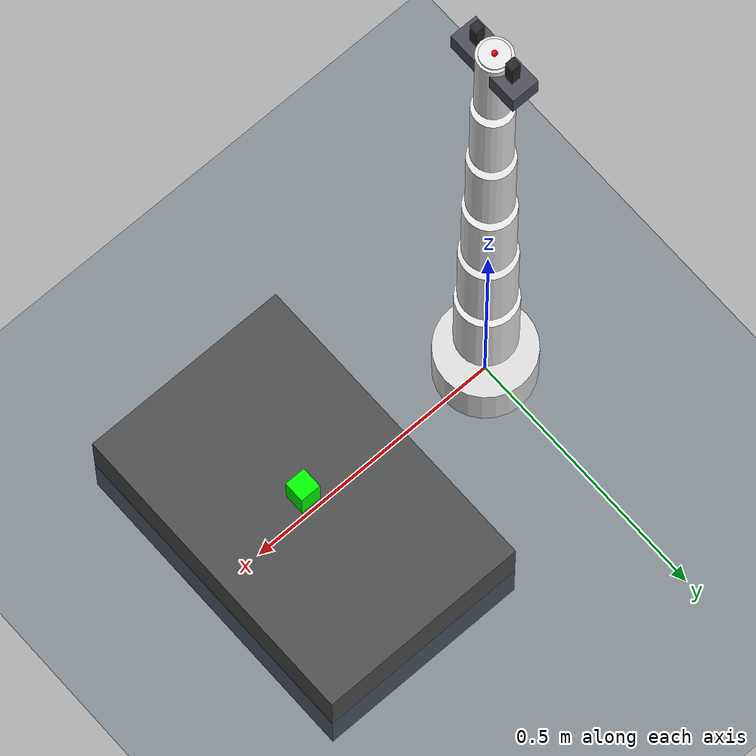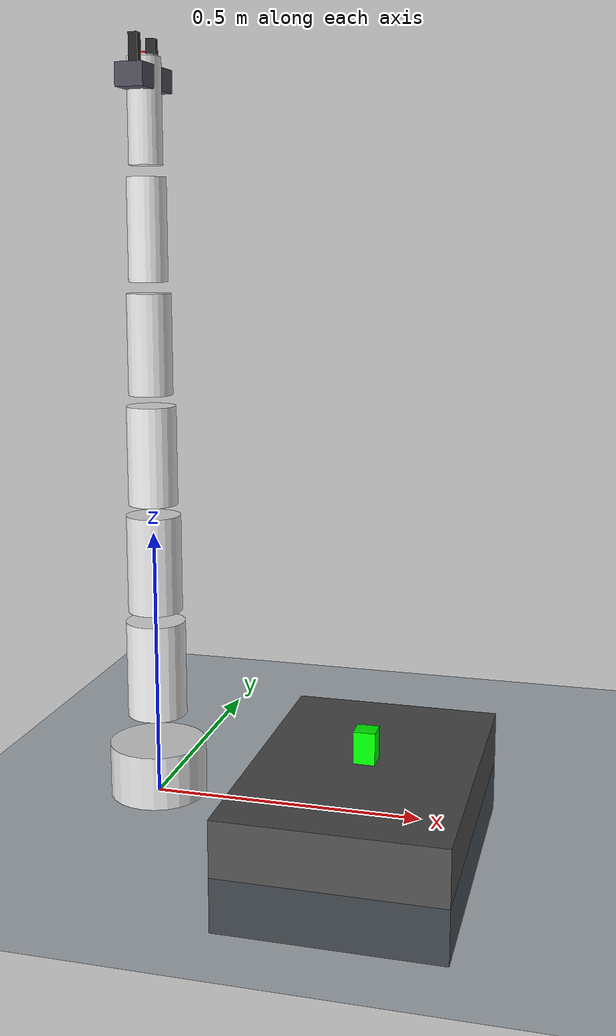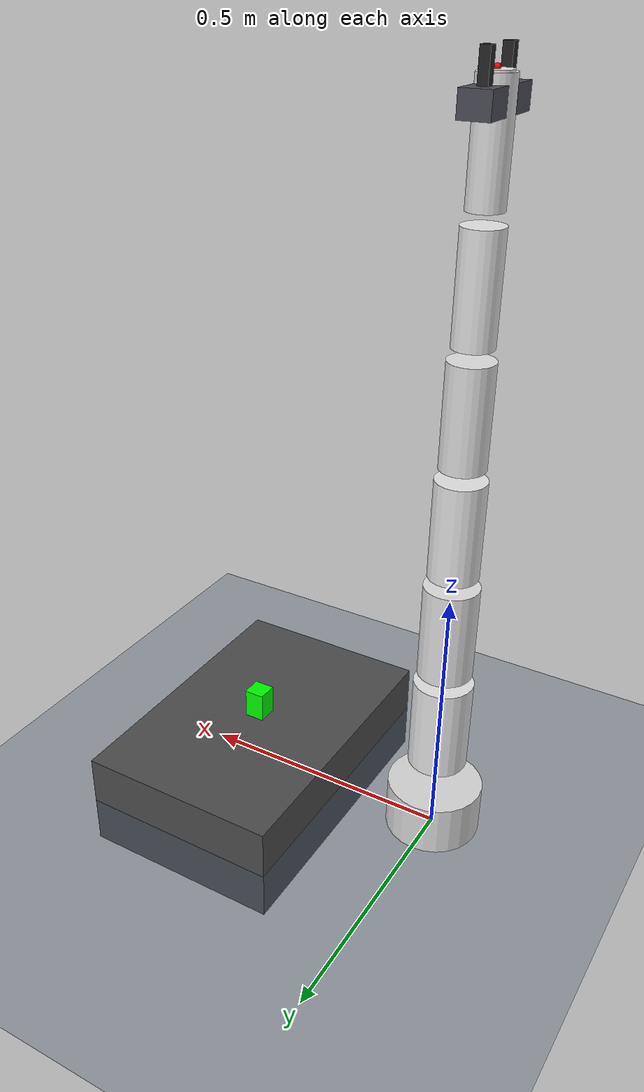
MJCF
<mujoco model="franka_panda_vla_ready">
    <compiler angle="radian"/>
    <option timestep="0.002" gravity="0 0 -9.81"/>
    <worldbody>
        <light directional="true" diffuse="0.6 0.6 0.6" pos="0 0 5" dir="0 0 -1"/>
        <geom name="floor" type="plane" size="5 5 0.1" rgba="0.2 0.3 0.4 1" contype="1" conaffinity="9"/>
        <body name="table" pos="0.4 0 0">
            <geom type="box" size="0.2 0.3 0.1" rgba="0.3 0.3 0.3 1" contype="1" conaffinity="9"/>
        </body>
        <!-- block rests ON the table top (table top = z 0.1), spawned just 2mm above to settle -->
        <body name="green_block" pos="0.4 0 0.132">
            <joint name="block_joint" type="free"/>
            <geom name="block_geom" type="box" size="0.02 0.02 0.03" rgba="0.0 1.0 0.0 1"
                  friction="1.5 0.01 0.0001" condim="4" contype="8" conaffinity="5"/>
        </body>
        <camera name="vla_front_camera" pos="0.8 0.0 0.6" xyaxes="0 1 0 -0.7 0 0.7" mode="fixed"/>
        <body name="link0" pos="0 0 0.05">
            <geom type="cylinder" size="0.09 0.05" rgba="0.85 0.85 0.85 1" contype="2" conaffinity="0"/>
            <body name="link1" gravcomp="1" pos="0 0 0.1">
                <joint name="joint1" type="hinge" axis="0 0 1" range="-2.8 2.8" damping="3"/>
                <geom type="cylinder" pos="0 0 0.095" size="0.055 0.09" rgba="0.9 0.9 0.9 1" contype="2" conaffinity="0"/>
                <body name="link2" gravcomp="1" pos="0 0 0.2">
                    <joint name="joint2" type="hinge" axis="0 1 0" range="-1.7 1.7" damping="3"/>
                    <geom type="cylinder" pos="0 0 0.095" size="0.05 0.09" rgba="0.88 0.88 0.88 1" contype="2" conaffinity="0"/>
                    <body name="link3" gravcomp="1" pos="0 0 0.2">
                        <joint name="joint3" type="hinge" axis="0 0 1" range="-2.8 2.8" damping="3"/>
                        <geom type="cylinder" pos="0 0 0.095" size="0.045 0.09" rgba="0.9 0.9 0.9 1" contype="2" conaffinity="0"/>
                        <body name="link4" gravcomp="1" pos="0 0 0.2">
                            <joint name="joint4" type="hinge" axis="0 -1 0" range="-3.0 0.0" damping="3"/>
                            <geom type="cylinder" pos="0 0 0.095" size="0.04 0.09" rgba="0.88 0.88 0.88 1" contype="2" conaffinity="0"/>
                            <body name="link5" gravcomp="1" pos="0 0 0.2">
                                <joint name="joint5" type="hinge" axis="0 0 1" range="-2.8 2.8" damping="3"/>
                                <geom type="cylinder" pos="0 0 0.095" size="0.035 0.09" rgba="0.9 0.9 0.9 1" contype="2" conaffinity="0"/>
                                <body name="link6" gravcomp="1" pos="0 0 0.2">
                                    <joint name="joint6" type="hinge" axis="0 1 0" range="-1.5 3.3" damping="3"/>
                                    <geom type="cylinder" pos="0 0 0.095" size="0.03 0.09" rgba="0.88 0.88 0.88 1" contype="2" conaffinity="0"/>
                                    <body name="link7" gravcomp="1" pos="0 0 0.1">
                                        <joint name="joint7" type="hinge" axis="0 0 1" range="-2.8 2.8" damping="3"/>
                                        <geom type="cylinder" pos="0 0 0.045" size="0.025 0.043" rgba="0.9 0.9 0.9 1" contype="2" conaffinity="0"/>
                                        <body name="hand" gravcomp="1" pos="0 0 0.05">
                                            <geom type="box" size="0.025 0.07 0.02" rgba="0.3 0.3 0.35 1" contype="2" conaffinity="0"/>
                                            <site name="grip_site" pos="0 0 0.04" size="0.005" rgba="1 0 0 1"/>
                                            <body name="left_finger" gravcomp="1" pos="0 0.04 0.04">
                                                <joint name="finger_joint1" type="slide" axis="0 -1 0" range="0 0.04" damping="5"/>
                                                <geom type="box" size="0.008 0.008 0.03" rgba="0.15 0.15 0.15 1"
                                                      friction="1.5 0.01 0.0001" condim="4"/>
                                            </body>
                                            <body name="right_finger" gravcomp="1" pos="0 -0.04 0.04">
                                                <joint name="finger_joint2" type="slide" axis="0 1 0" range="0 0.04" damping="5"/>
                                                <geom type="box" size="0.008 0.008 0.03" rgba="0.15 0.15 0.15 1"
                                                      friction="1.5 0.01 0.0001" condim="4"/>
                                            </body>
                                        </body>
                                    </body>
                                </body>
                            </body>
                        </body>
                    </body>
                </body>
            </body>
        </body>
    </worldbody>
    <actuator>
        <position name="m1" joint="joint1" kp="800" ctrlrange="-2.8 2.8"/>
        <position name="m2" joint="joint2" kp="800" ctrlrange="-1.7 1.7"/>
        <position name="m3" joint="joint3" kp="600" ctrlrange="-2.8 2.8"/>
        <position name="m4" joint="joint4" kp="600" ctrlrange="-3.0 0.0"/>
        <position name="m5" joint="joint5" kp="400" ctrlrange="-2.8 2.8"/>
        <position name="m6" joint="joint6" kp="400" ctrlrange="-1.5 3.3"/>
        <position name="m7" joint="joint7" kp="200" ctrlrange="-2.8 2.8"/>
        <position name="m_f1" joint="finger_joint1" kp="200" ctrlrange="0 0.04"/>
        <position name="m_f2" joint="finger_joint2" kp="200" ctrlrange="0 0.04"/>
    </actuator>
</mujoco>
